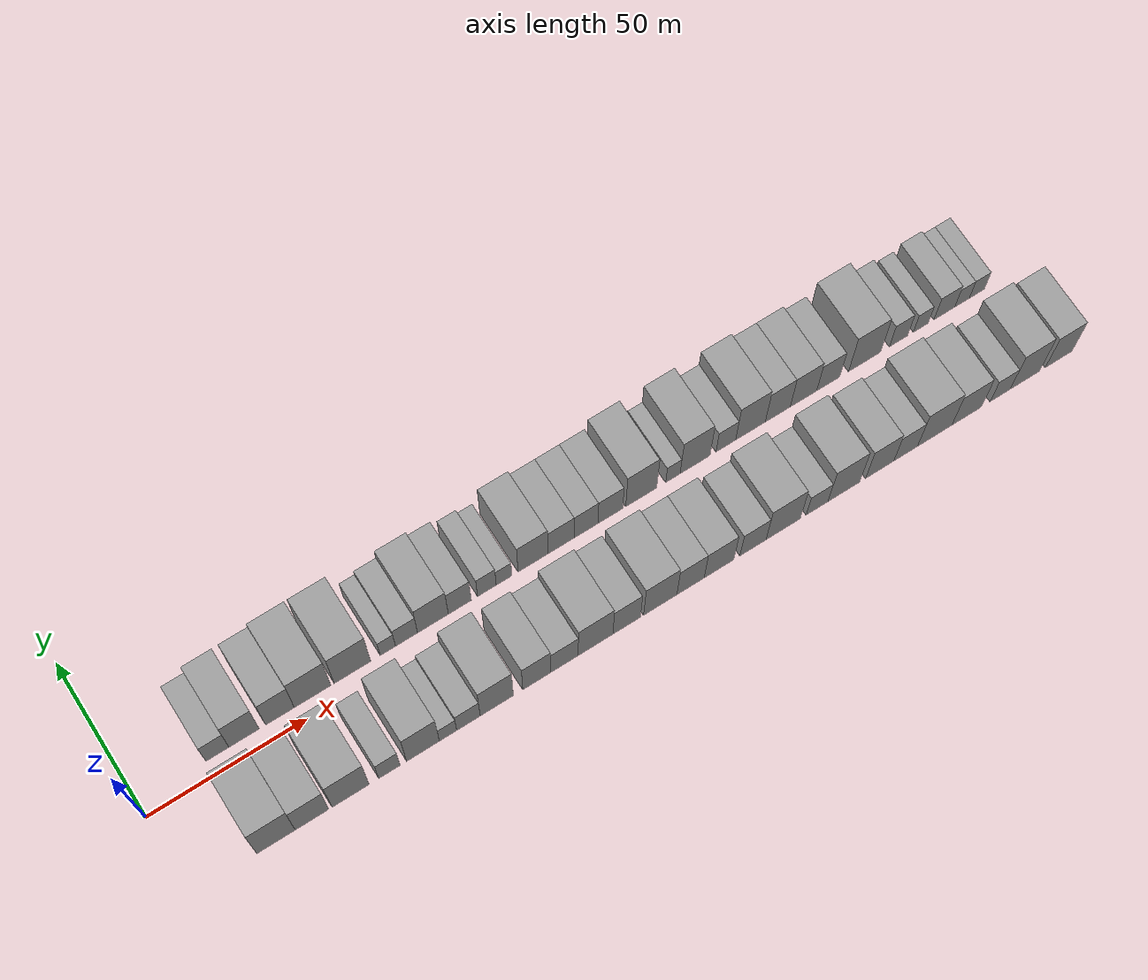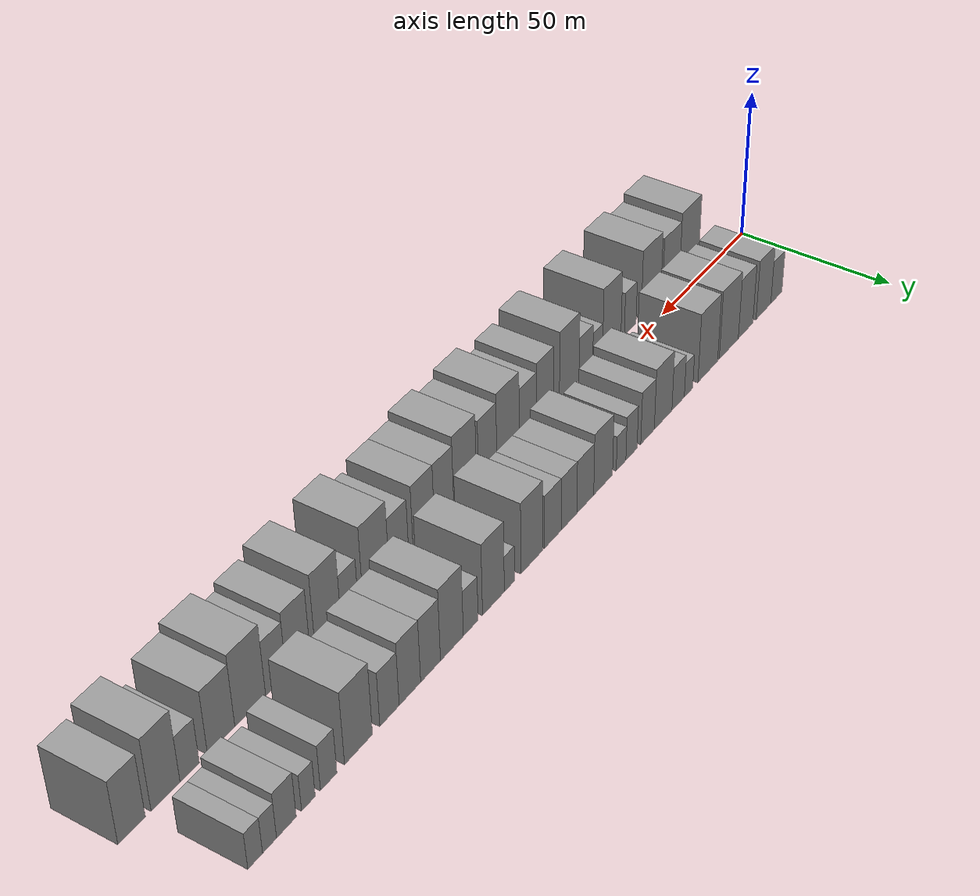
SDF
<sdf version="1.6">
 <world name="default">
  <scene>
   <sky><clouds><speed>12</speed></clouds></sky>
   <ambient>0.4 0.4 0.4 1</ambient>
   <background>0.7 0.7 0.7 1</background>
   <shadows>1</shadows>
  </scene>
  <gravity>0 0 -9.8066</gravity>
  <magnetic_field>6e-06 2.3e-05 -4.2e-05</magnetic_field>
  <physics default="0" name="default_physics" type="ode">
   <ode>
    <solver>
     <type>quick</type>
     <iters>10</iters>
     <sor>1.0</sor>
     <use_dynamic_moi_rescaling>0</use_dynamic_moi_rescaling>
    </solver>
    <constraints>
     <cfm>0</cfm>
     <erp>0.2</erp>
     <contact_max_correcting_vel>100</contact_max_correcting_vel>
     <contact_surface_layer>0.001</contact_surface_layer>
    </constraints>
   </ode>
   <max_step_size>0.004</max_step_size>
   <real_time_factor>1</real_time_factor>
   <real_time_update_rate>250</real_time_update_rate>
  </physics>
  <light name="sun" type="directional">
   <pose>0 0 10 0 0 0</pose>
   <diffuse>0.8 0.8 0.8 1</diffuse>
   <specular>0.2 0.2 0.2 1</specular>
   <attenuation>
    <range>1000</range>
    <constant>0.9</constant>
    <linear>0.01</linear>
    <quadratic>0.001</quadratic>
   </attenuation>
   <direction>-0.5 0.1 -0.9</direction>
  </light>
  <model name="building_1">
   <static>1</static>
   <pose>24.5800 14.5000 0 0.000000 0.000000 1.570796</pose>
   <link name="link">
    <pose>0 0 7.50 0 0 0</pose>
    <collision name="collision"><geometry><box><size>20.0000 7.1601 15.0000</size></box></geometry></collision>
    <visual name="visual">
     <cast_shadows>0</cast_shadows>
     <geometry><box><size>20.0000 7.1601 15.0000</size></box></geometry>
     <material>
      <script>
       <uri>model://grey_wall/materials/scripts</uri>
       <uri>model://grey_wall/materials/textures</uri>
       <name>vrc/grey_wall</name>
      </script>
     </material>
    </visual>
   </link>
  </model>
  <model name="building_2">
   <static>1</static>
   <pose>32.8570 14.5000 0 0.000000 0.000000 1.570796</pose>
   <link name="link">
    <pose>0 0 10.50 0 0 0</pose>
    <collision name="collision"><geometry><box><size>20.0000 9.3938 21.0000</size></box></geometry></collision>
    <visual name="visual">
     <cast_shadows>0</cast_shadows>
     <geometry><box><size>20.0000 9.3938 21.0000</size></box></geometry>
     <material>
      <script>
       <uri>model://grey_wall/materials/scripts</uri>
       <uri>model://grey_wall/materials/textures</uri>
       <name>vrc/grey_wall</name>
      </script>
     </material>
    </visual>
   </link>
  </model>
  <model name="building_3">
   <static>1</static>
   <pose>44.0521 14.5000 0 0.000000 0.000000 1.570796</pose>
   <link name="link">
    <pose>0 0 10.50 0 0 0</pose>
    <collision name="collision"><geometry><box><size>20.0000 8.9964 21.0000</size></box></geometry></collision>
    <visual name="visual">
     <cast_shadows>0</cast_shadows>
     <geometry><box><size>20.0000 8.9964 21.0000</size></box></geometry>
     <material>
      <script>
       <uri>model://grey_wall/materials/scripts</uri>
       <uri>model://grey_wall/materials/textures</uri>
       <name>vrc/grey_wall</name>
      </script>
     </material>
    </visual>
   </link>
  </model>
  <model name="building_4">
   <static>1</static>
   <pose>54.3155 14.5000 0 0.000000 0.000000 1.570796</pose>
   <link name="link">
    <pose>0 0 12.00 0 0 0</pose>
    <collision name="collision"><geometry><box><size>20.0000 11.5303 24.0000</size></box></geometry></collision>
    <visual name="visual">
     <cast_shadows>0</cast_shadows>
     <geometry><box><size>20.0000 11.5303 24.0000</size></box></geometry>
     <material>
      <script>
       <uri>model://grey_wall/materials/scripts</uri>
       <uri>model://grey_wall/materials/textures</uri>
       <name>vrc/grey_wall</name>
      </script>
     </material>
    </visual>
   </link>
  </model>
  <model name="building_5">
   <static>1</static>
   <pose>66.8927 14.5000 0 0.000000 0.000000 1.570796</pose>
   <link name="link">
    <pose>0 0 12.00 0 0 0</pose>
    <collision name="collision"><geometry><box><size>20.0000 11.6241 24.0000</size></box></geometry></collision>
    <visual name="visual">
     <cast_shadows>0</cast_shadows>
     <geometry><box><size>20.0000 11.6241 24.0000</size></box></geometry>
     <material>
      <script>
       <uri>model://grey_wall/materials/scripts</uri>
       <uri>model://grey_wall/materials/textures</uri>
       <name>vrc/grey_wall</name>
      </script>
     </material>
    </visual>
   </link>
  </model>
  <model name="building_6">
   <static>1</static>
   <pose>78.1400 14.5000 0 0.000000 0.000000 1.570796</pose>
   <link name="link">
    <pose>0 0 6.00 0 0 0</pose>
    <collision name="collision"><geometry><box><size>20.0000 4.8705 12.0000</size></box></geometry></collision>
    <visual name="visual">
     <cast_shadows>0</cast_shadows>
     <geometry><box><size>20.0000 4.8705 12.0000</size></box></geometry>
     <material>
      <script>
       <uri>model://grey_wall/materials/scripts</uri>
       <uri>model://grey_wall/materials/textures</uri>
       <name>vrc/grey_wall</name>
      </script>
     </material>
    </visual>
   </link>
  </model>
  <model name="building_7">
   <static>1</static>
   <pose>84.1085 14.5000 0 0.000000 0.000000 1.570796</pose>
   <link name="link">
    <pose>0 0 7.50 0 0 0</pose>
    <collision name="collision"><geometry><box><size>20.0000 7.0665 15.0000</size></box></geometry></collision>
    <visual name="visual">
     <cast_shadows>0</cast_shadows>
     <geometry><box><size>20.0000 7.0665 15.0000</size></box></geometry>
     <material>
      <script>
       <uri>model://grey_wall/materials/scripts</uri>
       <uri>model://grey_wall/materials/textures</uri>
       <name>vrc/grey_wall</name>
      </script>
     </material>
    </visual>
   </link>
  </model>
  <model name="building_8">
   <static>1</static>
   <pose>92.5737 14.5000 0 0.000000 0.000000 1.570796</pose>
   <link name="link">
    <pose>0 0 10.50 0 0 0</pose>
    <collision name="collision"><geometry><box><size>20.0000 9.8639 21.0000</size></box></geometry></collision>
    <visual name="visual">
     <cast_shadows>0</cast_shadows>
     <geometry><box><size>20.0000 9.8639 21.0000</size></box></geometry>
     <material>
      <script>
       <uri>model://grey_wall/materials/scripts</uri>
       <uri>model://grey_wall/materials/textures</uri>
       <name>vrc/grey_wall</name>
      </script>
     </material>
    </visual>
   </link>
  </model>
  <model name="building_9">
   <static>1</static>
   <pose>101.2259 14.5000 0 0.000000 0.000000 1.570796</pose>
   <link name="link">
    <pose>0 0 9.00 0 0 0</pose>
    <collision name="collision"><geometry><box><size>20.0000 7.4406 18.0000</size></box></geometry></collision>
    <visual name="visual">
     <cast_shadows>0</cast_shadows>
     <geometry><box><size>20.0000 7.4406 18.0000</size></box></geometry>
     <material>
      <script>
       <uri>model://grey_wall/materials/scripts</uri>
       <uri>model://grey_wall/materials/textures</uri>
       <name>vrc/grey_wall</name>
      </script>
     </material>
    </visual>
   </link>
  </model>
  <model name="building_10">
   <static>1</static>
   <pose>109.9643 14.5000 0 0.000000 0.000000 1.570796</pose>
   <link name="link">
    <pose>0 0 7.50 0 0 0</pose>
    <collision name="collision"><geometry><box><size>20.0000 6.0361 15.0000</size></box></geometry></collision>
    <visual name="visual">
     <cast_shadows>0</cast_shadows>
     <geometry><box><size>20.0000 6.0361 15.0000</size></box></geometry>
     <material>
      <script>
       <uri>model://grey_wall/materials/scripts</uri>
       <uri>model://grey_wall/materials/textures</uri>
       <name>vrc/grey_wall</name>
      </script>
     </material>
    </visual>
   </link>
  </model>
  <model name="building_11">
   <static>1</static>
   <pose>115.5246 14.5000 0 0.000000 0.000000 1.570796</pose>
   <link name="link">
    <pose>0 0 6.00 0 0 0</pose>
    <collision name="collision"><geometry><box><size>20.0000 5.0844 12.0000</size></box></geometry></collision>
    <visual name="visual">
     <cast_shadows>0</cast_shadows>
     <geometry><box><size>20.0000 5.0844 12.0000</size></box></geometry>
     <material>
      <script>
       <uri>model://grey_wall/materials/scripts</uri>
       <uri>model://grey_wall/materials/textures</uri>
       <name>vrc/grey_wall</name>
      </script>
     </material>
    </visual>
   </link>
  </model>
  <model name="building_12">
   <static>1</static>
   <pose>124.9662 14.5000 0 0.000000 0.000000 1.570796</pose>
   <link name="link">
    <pose>0 0 10.50 0 0 0</pose>
    <collision name="collision"><geometry><box><size>20.0000 9.7989 21.0000</size></box></geometry></collision>
    <visual name="visual">
     <cast_shadows>0</cast_shadows>
     <geometry><box><size>20.0000 9.7989 21.0000</size></box></geometry>
     <material>
      <script>
       <uri>model://grey_wall/materials/scripts</uri>
       <uri>model://grey_wall/materials/textures</uri>
       <name>vrc/grey_wall</name>
      </script>
     </material>
    </visual>
   </link>
  </model>
  <model name="building_13">
   <static>1</static>
   <pose>134.1524 14.5000 0 0.000000 0.000000 1.570796</pose>
   <link name="link">
    <pose>0 0 9.00 0 0 0</pose>
    <collision name="collision"><geometry><box><size>20.0000 8.5734 18.0000</size></box></geometry></collision>
    <visual name="visual">
     <cast_shadows>0</cast_shadows>
     <geometry><box><size>20.0000 8.5734 18.0000</size></box></geometry>
     <material>
      <script>
       <uri>model://grey_wall/materials/scripts</uri>
       <uri>model://grey_wall/materials/textures</uri>
       <name>vrc/grey_wall</name>
      </script>
     </material>
    </visual>
   </link>
  </model>
  <model name="building_14">
   <static>1</static>
   <pose>142.3637 14.5000 0 0.000000 0.000000 1.570796</pose>
   <link name="link">
    <pose>0 0 9.00 0 0 0</pose>
    <collision name="collision"><geometry><box><size>20.0000 7.8491 18.0000</size></box></geometry></collision>
    <visual name="visual">
     <cast_shadows>0</cast_shadows>
     <geometry><box><size>20.0000 7.8491 18.0000</size></box></geometry>
     <material>
      <script>
       <uri>model://grey_wall/materials/scripts</uri>
       <uri>model://grey_wall/materials/textures</uri>
       <name>vrc/grey_wall</name>
      </script>
     </material>
    </visual>
   </link>
  </model>
  <model name="building_15">
   <static>1</static>
   <pose>150.3794 14.5000 0 0.000000 0.000000 1.570796</pose>
   <link name="link">
    <pose>0 0 9.00 0 0 0</pose>
    <collision name="collision"><geometry><box><size>20.0000 8.1824 18.0000</size></box></geometry></collision>
    <visual name="visual">
     <cast_shadows>0</cast_shadows>
     <geometry><box><size>20.0000 8.1824 18.0000</size></box></geometry>
     <material>
      <script>
       <uri>model://grey_wall/materials/scripts</uri>
       <uri>model://grey_wall/materials/textures</uri>
       <name>vrc/grey_wall</name>
      </script>
     </material>
    </visual>
   </link>
  </model>
  <model name="building_16">
   <static>1</static>
   <pose>160.6285 14.5000 0 0.000000 0.000000 1.570796</pose>
   <link name="link">
    <pose>0 0 12.00 0 0 0</pose>
    <collision name="collision"><geometry><box><size>20.0000 10.3158 24.0000</size></box></geometry></collision>
    <visual name="visual">
     <cast_shadows>0</cast_shadows>
     <geometry><box><size>20.0000 10.3158 24.0000</size></box></geometry>
     <material>
      <script>
       <uri>model://grey_wall/materials/scripts</uri>
       <uri>model://grey_wall/materials/textures</uri>
       <name>vrc/grey_wall</name>
      </script>
     </material>
    </visual>
   </link>
  </model>
  <model name="building_17">
   <static>1</static>
   <pose>171.1997 14.5000 0 0.000000 0.000000 1.570796</pose>
   <link name="link">
    <pose>0 0 6.00 0 0 0</pose>
    <collision name="collision"><geometry><box><size>20.0000 4.8267 12.0000</size></box></geometry></collision>
    <visual name="visual">
     <cast_shadows>0</cast_shadows>
     <geometry><box><size>20.0000 4.8267 12.0000</size></box></geometry>
     <material>
      <script>
       <uri>model://grey_wall/materials/scripts</uri>
       <uri>model://grey_wall/materials/textures</uri>
       <name>vrc/grey_wall</name>
      </script>
     </material>
    </visual>
   </link>
  </model>
  <model name="building_18">
   <static>1</static>
   <pose>178.6319 14.5000 0 0.000000 0.000000 1.570796</pose>
   <link name="link">
    <pose>0 0 12.00 0 0 0</pose>
    <collision name="collision"><geometry><box><size>20.0000 10.0376 24.0000</size></box></geometry></collision>
    <visual name="visual">
     <cast_shadows>0</cast_shadows>
     <geometry><box><size>20.0000 10.0376 24.0000</size></box></geometry>
     <material>
      <script>
       <uri>model://grey_wall/materials/scripts</uri>
       <uri>model://grey_wall/materials/textures</uri>
       <name>vrc/grey_wall</name>
      </script>
     </material>
    </visual>
   </link>
  </model>
  <model name="building_19">
   <static>1</static>
   <pose>188.9557 14.5000 0 0.000000 0.000000 1.570796</pose>
   <link name="link">
    <pose>0 0 7.50 0 0 0</pose>
    <collision name="collision"><geometry><box><size>20.0000 6.6099 15.0000</size></box></geometry></collision>
    <visual name="visual">
     <cast_shadows>0</cast_shadows>
     <geometry><box><size>20.0000 6.6099 15.0000</size></box></geometry>
     <material>
      <script>
       <uri>model://grey_wall/materials/scripts</uri>
       <uri>model://grey_wall/materials/textures</uri>
       <name>vrc/grey_wall</name>
      </script>
     </material>
    </visual>
   </link>
  </model>
  <model name="building_20">
   <static>1</static>
   <pose>197.2982 14.5000 0 0.000000 0.000000 1.570796</pose>
   <link name="link">
    <pose>0 0 12.00 0 0 0</pose>
    <collision name="collision"><geometry><box><size>20.0000 10.0751 24.0000</size></box></geometry></collision>
    <visual name="visual">
     <cast_shadows>0</cast_shadows>
     <geometry><box><size>20.0000 10.0751 24.0000</size></box></geometry>
     <material>
      <script>
       <uri>model://grey_wall/materials/scripts</uri>
       <uri>model://grey_wall/materials/textures</uri>
       <name>vrc/grey_wall</name>
      </script>
     </material>
    </visual>
   </link>
  </model>
  <model name="building_21">
   <static>1</static>
   <pose>206.5901 14.5000 0 0.000000 0.000000 1.570796</pose>
   <link name="link">
    <pose>0 0 10.50 0 0 0</pose>
    <collision name="collision"><geometry><box><size>20.0000 8.5087 21.0000</size></box></geometry></collision>
    <visual name="visual">
     <cast_shadows>0</cast_shadows>
     <geometry><box><size>20.0000 8.5087 21.0000</size></box></geometry>
     <material>
      <script>
       <uri>model://grey_wall/materials/scripts</uri>
       <uri>model://grey_wall/materials/textures</uri>
       <name>vrc/grey_wall</name>
      </script>
     </material>
    </visual>
   </link>
  </model>
  <model name="building_22">
   <static>1</static>
   <pose>215.3649 14.5000 0 0.000000 0.000000 1.570796</pose>
   <link name="link">
    <pose>0 0 10.50 0 0 0</pose>
    <collision name="collision"><geometry><box><size>20.0000 9.0410 21.0000</size></box></geometry></collision>
    <visual name="visual">
     <cast_shadows>0</cast_shadows>
     <geometry><box><size>20.0000 9.0410 21.0000</size></box></geometry>
     <material>
      <script>
       <uri>model://grey_wall/materials/scripts</uri>
       <uri>model://grey_wall/materials/textures</uri>
       <name>vrc/grey_wall</name>
      </script>
     </material>
    </visual>
   </link>
  </model>
  <model name="building_23">
   <static>1</static>
   <pose>223.8571 14.5000 0 0.000000 0.000000 1.570796</pose>
   <link name="link">
    <pose>0 0 9.00 0 0 0</pose>
    <collision name="collision"><geometry><box><size>20.0000 7.9435 18.0000</size></box></geometry></collision>
    <visual name="visual">
     <cast_shadows>0</cast_shadows>
     <geometry><box><size>20.0000 7.9435 18.0000</size></box></geometry>
     <material>
      <script>
       <uri>model://grey_wall/materials/scripts</uri>
       <uri>model://grey_wall/materials/textures</uri>
       <name>vrc/grey_wall</name>
      </script>
     </material>
    </visual>
   </link>
  </model>
  <model name="building_24">
   <static>1</static>
   <pose>236.3933 14.5000 0 0.000000 0.000000 1.570796</pose>
   <link name="link">
    <pose>0 0 12.00 0 0 0</pose>
    <collision name="collision"><geometry><box><size>20.0000 11.1290 24.0000</size></box></geometry></collision>
    <visual name="visual">
     <cast_shadows>0</cast_shadows>
     <geometry><box><size>20.0000 11.1290 24.0000</size></box></geometry>
     <material>
      <script>
       <uri>model://grey_wall/materials/scripts</uri>
       <uri>model://grey_wall/materials/textures</uri>
       <name>vrc/grey_wall</name>
      </script>
     </material>
    </visual>
   </link>
  </model>
  <model name="building_25">
   <static>1</static>
   <pose>248.1304 14.5000 0 0.000000 0.000000 1.570796</pose>
   <link name="link">
    <pose>0 0 7.50 0 0 0</pose>
    <collision name="collision"><geometry><box><size>20.0000 6.3451 15.0000</size></box></geometry></collision>
    <visual name="visual">
     <cast_shadows>0</cast_shadows>
     <geometry><box><size>20.0000 6.3451 15.0000</size></box></geometry>
     <material>
      <script>
       <uri>model://grey_wall/materials/scripts</uri>
       <uri>model://grey_wall/materials/textures</uri>
       <name>vrc/grey_wall</name>
      </script>
     </material>
    </visual>
   </link>
  </model>
  <model name="building_26">
   <static>1</static>
   <pose>255.8941 14.5000 0 0.000000 0.000000 1.570796</pose>
   <link name="link">
    <pose>0 0 6.00 0 0 0</pose>
    <collision name="collision"><geometry><box><size>20.0000 5.1823 12.0000</size></box></geometry></collision>
    <visual name="visual">
     <cast_shadows>0</cast_shadows>
     <geometry><box><size>20.0000 5.1823 12.0000</size></box></geometry>
     <material>
      <script>
       <uri>model://grey_wall/materials/scripts</uri>
       <uri>model://grey_wall/materials/textures</uri>
       <name>vrc/grey_wall</name>
      </script>
     </material>
    </visual>
   </link>
  </model>
  <model name="building_27">
   <static>1</static>
   <pose>264.1431 14.5000 0 0.000000 0.000000 1.570796</pose>
   <link name="link">
    <pose>0 0 7.50 0 0 0</pose>
    <collision name="collision"><geometry><box><size>20.0000 7.3158 15.0000</size></box></geometry></collision>
    <visual name="visual">
     <cast_shadows>0</cast_shadows>
     <geometry><box><size>20.0000 7.3158 15.0000</size></box></geometry>
     <material>
      <script>
       <uri>model://grey_wall/materials/scripts</uri>
       <uri>model://grey_wall/materials/textures</uri>
       <name>vrc/grey_wall</name>
      </script>
     </material>
    </visual>
   </link>
  </model>
  <model name="building_28">
   <static>1</static>
   <pose>270.3426 14.5000 0 0.000000 0.000000 1.570796</pose>
   <link name="link">
    <pose>0 0 6.00 0 0 0</pose>
    <collision name="collision"><geometry><box><size>20.0000 5.0831 12.0000</size></box></geometry></collision>
    <visual name="visual">
     <cast_shadows>0</cast_shadows>
     <geometry><box><size>20.0000 5.0831 12.0000</size></box></geometry>
     <material>
      <script>
       <uri>model://grey_wall/materials/scripts</uri>
       <uri>model://grey_wall/materials/textures</uri>
       <name>vrc/grey_wall</name>
      </script>
     </material>
    </visual>
   </link>
  </model>
  <model name="building_29">
   <static>1</static>
   <pose>275.5428 14.5000 0 0.000000 0.000000 1.570796</pose>
   <link name="link">
    <pose>0 0 6.00 0 0 0</pose>
    <collision name="collision"><geometry><box><size>20.0000 5.3172 12.0000</size></box></geometry></collision>
    <visual name="visual">
     <cast_shadows>0</cast_shadows>
     <geometry><box><size>20.0000 5.3172 12.0000</size></box></geometry>
     <material>
      <script>
       <uri>model://grey_wall/materials/scripts</uri>
       <uri>model://grey_wall/materials/textures</uri>
       <name>vrc/grey_wall</name>
      </script>
     </material>
    </visual>
   </link>
  </model>
  <model name="building_30">
   <static>1</static>
   <pose>25.9216 -14.5000 0 0.000000 0.000000 1.570796</pose>
   <link name="link">
    <pose>0 0 12.00 0 0 0</pose>
    <collision name="collision"><geometry><box><size>20.0000 11.8431 24.0000</size></box></geometry></collision>
    <visual name="visual">
     <cast_shadows>0</cast_shadows>
     <geometry><box><size>20.0000 11.8431 24.0000</size></box></geometry>
     <material>
      <script>
       <uri>model://grey_wall/materials/scripts</uri>
       <uri>model://grey_wall/materials/textures</uri>
       <name>vrc/grey_wall</name>
      </script>
     </material>
    </visual>
   </link>
  </model>
  <model name="building_31">
   <static>1</static>
   <pose>37.0387 -14.5000 0 0.000000 0.000000 1.570796</pose>
   <link name="link">
    <pose>0 0 10.50 0 0 0</pose>
    <collision name="collision"><geometry><box><size>20.0000 10.3912 21.0000</size></box></geometry></collision>
    <visual name="visual">
     <cast_shadows>0</cast_shadows>
     <geometry><box><size>20.0000 10.3912 21.0000</size></box></geometry>
     <material>
      <script>
       <uri>model://grey_wall/materials/scripts</uri>
       <uri>model://grey_wall/materials/textures</uri>
       <name>vrc/grey_wall</name>
      </script>
     </material>
    </visual>
   </link>
  </model>
  <model name="building_32">
   <static>1</static>
   <pose>49.0209 -14.5000 0 0.000000 0.000000 1.570796</pose>
   <link name="link">
    <pose>0 0 12.00 0 0 0</pose>
    <collision name="collision"><geometry><box><size>20.0000 11.5732 24.0000</size></box></geometry></collision>
    <visual name="visual">
     <cast_shadows>0</cast_shadows>
     <geometry><box><size>20.0000 11.5732 24.0000</size></box></geometry>
     <material>
      <script>
       <uri>model://grey_wall/materials/scripts</uri>
       <uri>model://grey_wall/materials/textures</uri>
       <name>vrc/grey_wall</name>
      </script>
     </material>
    </visual>
   </link>
  </model>
  <model name="building_33">
   <static>1</static>
   <pose>61.1733 -14.5000 0 0.000000 0.000000 1.570796</pose>
   <link name="link">
    <pose>0 0 7.50 0 0 0</pose>
    <collision name="collision"><geometry><box><size>20.0000 6.7315 15.0000</size></box></geometry></collision>
    <visual name="visual">
     <cast_shadows>0</cast_shadows>
     <geometry><box><size>20.0000 6.7315 15.0000</size></box></geometry>
     <material>
      <script>
       <uri>model://grey_wall/materials/scripts</uri>
       <uri>model://grey_wall/materials/textures</uri>
       <name>vrc/grey_wall</name>
      </script>
     </material>
    </visual>
   </link>
  </model>
  <model name="building_34">
   <static>1</static>
   <pose>71.7180 -14.5000 0 0.000000 0.000000 1.570796</pose>
   <link name="link">
    <pose>0 0 12.00 0 0 0</pose>
    <collision name="collision"><geometry><box><size>20.0000 10.3581 24.0000</size></box></geometry></collision>
    <visual name="visual">
     <cast_shadows>0</cast_shadows>
     <geometry><box><size>20.0000 10.3581 24.0000</size></box></geometry>
     <material>
      <script>
       <uri>model://grey_wall/materials/scripts</uri>
       <uri>model://grey_wall/materials/textures</uri>
       <name>vrc/grey_wall</name>
      </script>
     </material>
    </visual>
   </link>
  </model>
  <model name="building_35">
   <static>1</static>
   <pose>79.6423 -14.5000 0 0.000000 0.000000 1.570796</pose>
   <link name="link">
    <pose>0 0 6.00 0 0 0</pose>
    <collision name="collision"><geometry><box><size>20.0000 5.4904 12.0000</size></box></geometry></collision>
    <visual name="visual">
     <cast_shadows>0</cast_shadows>
     <geometry><box><size>20.0000 5.4904 12.0000</size></box></geometry>
     <material>
      <script>
       <uri>model://grey_wall/materials/scripts</uri>
       <uri>model://grey_wall/materials/textures</uri>
       <name>vrc/grey_wall</name>
      </script>
     </material>
    </visual>
   </link>
  </model>
  <model name="building_36">
   <static>1</static>
   <pose>86.1183 -14.5000 0 0.000000 0.000000 1.570796</pose>
   <link name="link">
    <pose>0 0 7.50 0 0 0</pose>
    <collision name="collision"><geometry><box><size>20.0000 7.4617 15.0000</size></box></geometry></collision>
    <visual name="visual">
     <cast_shadows>0</cast_shadows>
     <geometry><box><size>20.0000 7.4617 15.0000</size></box></geometry>
     <material>
      <script>
       <uri>model://grey_wall/materials/scripts</uri>
       <uri>model://grey_wall/materials/textures</uri>
       <name>vrc/grey_wall</name>
      </script>
     </material>
    </visual>
   </link>
  </model>
  <model name="building_37">
   <static>1</static>
   <pose>95.1426 -14.5000 0 0.000000 0.000000 1.570796</pose>
   <link name="link">
    <pose>0 0 12.00 0 0 0</pose>
    <collision name="collision"><geometry><box><size>20.0000 10.5868 24.0000</size></box></geometry></collision>
    <visual name="visual">
     <cast_shadows>0</cast_shadows>
     <geometry><box><size>20.0000 10.5868 24.0000</size></box></geometry>
     <material>
      <script>
       <uri>model://grey_wall/materials/scripts</uri>
       <uri>model://grey_wall/materials/textures</uri>
       <name>vrc/grey_wall</name>
      </script>
     </material>
    </visual>
   </link>
  </model>
  <model name="building_38">
   <static>1</static>
   <pose>107.9551 -14.5000 0 0.000000 0.000000 1.570796</pose>
   <link name="link">
    <pose>0 0 10.50 0 0 0</pose>
    <collision name="collision"><geometry><box><size>20.0000 9.0383 21.0000</size></box></geometry></collision>
    <visual name="visual">
     <cast_shadows>0</cast_shadows>
     <geometry><box><size>20.0000 9.0383 21.0000</size></box></geometry>
     <material>
      <script>
       <uri>model://grey_wall/materials/scripts</uri>
       <uri>model://grey_wall/materials/textures</uri>
       <name>vrc/grey_wall</name>
      </script>
     </material>
    </visual>
   </link>
  </model>
  <model name="building_39">
   <static>1</static>
   <pose>116.8710 -14.5000 0 0.000000 0.000000 1.570796</pose>
   <link name="link">
    <pose>0 0 9.00 0 0 0</pose>
    <collision name="collision"><geometry><box><size>20.0000 8.7934 18.0000</size></box></geometry></collision>
    <visual name="visual">
     <cast_shadows>0</cast_shadows>
     <geometry><box><size>20.0000 8.7934 18.0000</size></box></geometry>
     <material>
      <script>
       <uri>model://grey_wall/materials/scripts</uri>
       <uri>model://grey_wall/materials/textures</uri>
       <name>vrc/grey_wall</name>
      </script>
     </material>
    </visual>
   </link>
  </model>
  <model name="building_40">
   <static>1</static>
   <pose>126.9209 -14.5000 0 0.000000 0.000000 1.570796</pose>
   <link name="link">
    <pose>0 0 12.00 0 0 0</pose>
    <collision name="collision"><geometry><box><size>20.0000 11.3064 24.0000</size></box></geometry></collision>
    <visual name="visual">
     <cast_shadows>0</cast_shadows>
     <geometry><box><size>20.0000 11.3064 24.0000</size></box></geometry>
     <material>
      <script>
       <uri>model://grey_wall/materials/scripts</uri>
       <uri>model://grey_wall/materials/textures</uri>
       <name>vrc/grey_wall</name>
      </script>
     </material>
    </visual>
   </link>
  </model>
  <model name="building_41">
   <static>1</static>
   <pose>137.0565 -14.5000 0 0.000000 0.000000 1.570796</pose>
   <link name="link">
    <pose>0 0 10.50 0 0 0</pose>
    <collision name="collision"><geometry><box><size>20.0000 8.9648 21.0000</size></box></geometry></collision>
    <visual name="visual">
     <cast_shadows>0</cast_shadows>
     <geometry><box><size>20.0000 8.9648 21.0000</size></box></geometry>
     <material>
      <script>
       <uri>model://grey_wall/materials/scripts</uri>
       <uri>model://grey_wall/materials/textures</uri>
       <name>vrc/grey_wall</name>
      </script>
     </material>
    </visual>
   </link>
  </model>
  <model name="building_42">
   <static>1</static>
   <pose>148.0106 -14.5000 0 0.000000 0.000000 1.570796</pose>
   <link name="link">
    <pose>0 0 12.00 0 0 0</pose>
    <collision name="collision"><geometry><box><size>20.0000 10.9434 24.0000</size></box></geometry></collision>
    <visual name="visual">
     <cast_shadows>0</cast_shadows>
     <geometry><box><size>20.0000 10.9434 24.0000</size></box></geometry>
     <material>
      <script>
       <uri>model://grey_wall/materials/scripts</uri>
       <uri>model://grey_wall/materials/textures</uri>
       <name>vrc/grey_wall</name>
      </script>
     </material>
    </visual>
   </link>
  </model>
  <model name="building_43">
   <static>1</static>
   <pose>158.0014 -14.5000 0 0.000000 0.000000 1.570796</pose>
   <link name="link">
    <pose>0 0 10.50 0 0 0</pose>
    <collision name="collision"><geometry><box><size>20.0000 9.0382 21.0000</size></box></geometry></collision>
    <visual name="visual">
     <cast_shadows>0</cast_shadows>
     <geometry><box><size>20.0000 9.0382 21.0000</size></box></geometry>
     <material>
      <script>
       <uri>model://grey_wall/materials/scripts</uri>
       <uri>model://grey_wall/materials/textures</uri>
       <name>vrc/grey_wall</name>
      </script>
     </material>
    </visual>
   </link>
  </model>
  <model name="building_44">
   <static>1</static>
   <pose>167.4317 -14.5000 0 0.000000 0.000000 1.570796</pose>
   <link name="link">
    <pose>0 0 10.50 0 0 0</pose>
    <collision name="collision"><geometry><box><size>20.0000 9.8224 21.0000</size></box></geometry></collision>
    <visual name="visual">
     <cast_shadows>0</cast_shadows>
     <geometry><box><size>20.0000 9.8224 21.0000</size></box></geometry>
     <material>
      <script>
       <uri>model://grey_wall/materials/scripts</uri>
       <uri>model://grey_wall/materials/textures</uri>
       <name>vrc/grey_wall</name>
      </script>
     </material>
    </visual>
   </link>
  </model>
  <model name="building_45">
   <static>1</static>
   <pose>178.7008 -14.5000 0 0.000000 0.000000 1.570796</pose>
   <link name="link">
    <pose>0 0 9.00 0 0 0</pose>
    <collision name="collision"><geometry><box><size>20.0000 8.7158 18.0000</size></box></geometry></collision>
    <visual name="visual">
     <cast_shadows>0</cast_shadows>
     <geometry><box><size>20.0000 8.7158 18.0000</size></box></geometry>
     <material>
      <script>
       <uri>model://grey_wall/materials/scripts</uri>
       <uri>model://grey_wall/materials/textures</uri>
       <name>vrc/grey_wall</name>
      </script>
     </material>
    </visual>
   </link>
  </model>
  <model name="building_46">
   <static>1</static>
   <pose>188.8040 -14.5000 0 0.000000 0.000000 1.570796</pose>
   <link name="link">
    <pose>0 0 12.00 0 0 0</pose>
    <collision name="collision"><geometry><box><size>20.0000 11.4906 24.0000</size></box></geometry></collision>
    <visual name="visual">
     <cast_shadows>0</cast_shadows>
     <geometry><box><size>20.0000 11.4906 24.0000</size></box></geometry>
     <material>
      <script>
       <uri>model://grey_wall/materials/scripts</uri>
       <uri>model://grey_wall/materials/textures</uri>
       <name>vrc/grey_wall</name>
      </script>
     </material>
    </visual>
   </link>
  </model>
  <model name="building_47">
   <static>1</static>
   <pose>200.1975 -14.5000 0 0.000000 0.000000 1.570796</pose>
   <link name="link">
    <pose>0 0 7.50 0 0 0</pose>
    <collision name="collision"><geometry><box><size>20.0000 7.2964 15.0000</size></box></geometry></collision>
    <visual name="visual">
     <cast_shadows>0</cast_shadows>
     <geometry><box><size>20.0000 7.2964 15.0000</size></box></geometry>
     <material>
      <script>
       <uri>model://grey_wall/materials/scripts</uri>
       <uri>model://grey_wall/materials/textures</uri>
       <name>vrc/grey_wall</name>
      </script>
     </material>
    </visual>
   </link>
  </model>
  <model name="building_48">
   <static>1</static>
   <pose>209.2456 -14.5000 0 0.000000 0.000000 1.570796</pose>
   <link name="link">
    <pose>0 0 12.00 0 0 0</pose>
    <collision name="collision"><geometry><box><size>20.0000 10.7999 24.0000</size></box></geometry></collision>
    <visual name="visual">
     <cast_shadows>0</cast_shadows>
     <geometry><box><size>20.0000 10.7999 24.0000</size></box></geometry>
     <material>
      <script>
       <uri>model://grey_wall/materials/scripts</uri>
       <uri>model://grey_wall/materials/textures</uri>
       <name>vrc/grey_wall</name>
      </script>
     </material>
    </visual>
   </link>
  </model>
  <model name="building_49">
   <static>1</static>
   <pose>221.4512 -14.5000 0 0.000000 0.000000 1.570796</pose>
   <link name="link">
    <pose>0 0 10.50 0 0 0</pose>
    <collision name="collision"><geometry><box><size>20.0000 9.6111 21.0000</size></box></geometry></collision>
    <visual name="visual">
     <cast_shadows>0</cast_shadows>
     <geometry><box><size>20.0000 9.6111 21.0000</size></box></geometry>
     <material>
      <script>
       <uri>model://grey_wall/materials/scripts</uri>
       <uri>model://grey_wall/materials/textures</uri>
       <name>vrc/grey_wall</name>
      </script>
     </material>
    </visual>
   </link>
  </model>
  <model name="building_50">
   <static>1</static>
   <pose>230.3031 -14.5000 0 0.000000 0.000000 1.570796</pose>
   <link name="link">
    <pose>0 0 9.00 0 0 0</pose>
    <collision name="collision"><geometry><box><size>20.0000 8.0928 18.0000</size></box></geometry></collision>
    <visual name="visual">
     <cast_shadows>0</cast_shadows>
     <geometry><box><size>20.0000 8.0928 18.0000</size></box></geometry>
     <material>
      <script>
       <uri>model://grey_wall/materials/scripts</uri>
       <uri>model://grey_wall/materials/textures</uri>
       <name>vrc/grey_wall</name>
      </script>
     </material>
    </visual>
   </link>
  </model>
  <model name="building_51">
   <static>1</static>
   <pose>240.2750 -14.5000 0 0.000000 0.000000 1.570796</pose>
   <link name="link">
    <pose>0 0 12.00 0 0 0</pose>
    <collision name="collision"><geometry><box><size>20.0000 11.8509 24.0000</size></box></geometry></collision>
    <visual name="visual">
     <cast_shadows>0</cast_shadows>
     <geometry><box><size>20.0000 11.8509 24.0000</size></box></geometry>
     <material>
      <script>
       <uri>model://grey_wall/materials/scripts</uri>
       <uri>model://grey_wall/materials/textures</uri>
       <name>vrc/grey_wall</name>
      </script>
     </material>
    </visual>
   </link>
  </model>
  <model name="building_52">
   <static>1</static>
   <pose>251.3274 -14.5000 0 0.000000 0.000000 1.570796</pose>
   <link name="link">
    <pose>0 0 10.50 0 0 0</pose>
    <collision name="collision"><geometry><box><size>20.0000 10.2538 21.0000</size></box></geometry></collision>
    <visual name="visual">
     <cast_shadows>0</cast_shadows>
     <geometry><box><size>20.0000 10.2538 21.0000</size></box></geometry>
     <material>
      <script>
       <uri>model://grey_wall/materials/scripts</uri>
       <uri>model://grey_wall/materials/textures</uri>
       <name>vrc/grey_wall</name>
      </script>
     </material>
    </visual>
   </link>
  </model>
  <model name="building_53">
   <static>1</static>
   <pose>262.9565 -14.5000 0 0.000000 0.000000 1.570796</pose>
   <link name="link">
    <pose>0 0 7.50 0 0 0</pose>
    <collision name="collision"><geometry><box><size>20.0000 7.0045 15.0000</size></box></geometry></collision>
    <visual name="visual">
     <cast_shadows>0</cast_shadows>
     <geometry><box><size>20.0000 7.0045 15.0000</size></box></geometry>
     <material>
      <script>
       <uri>model://grey_wall/materials/scripts</uri>
       <uri>model://grey_wall/materials/textures</uri>
       <name>vrc/grey_wall</name>
      </script>
     </material>
    </visual>
   </link>
  </model>
  <model name="building_54">
   <static>1</static>
   <pose>271.5915 -14.5000 0 0.000000 0.000000 1.570796</pose>
   <link name="link">
    <pose>0 0 12.00 0 0 0</pose>
    <collision name="collision"><geometry><box><size>20.0000 10.2654 24.0000</size></box></geometry></collision>
    <visual name="visual">
     <cast_shadows>0</cast_shadows>
     <geometry><box><size>20.0000 10.2654 24.0000</size></box></geometry>
     <material>
      <script>
       <uri>model://grey_wall/materials/scripts</uri>
       <uri>model://grey_wall/materials/textures</uri>
       <name>vrc/grey_wall</name>
      </script>
     </material>
    </visual>
   </link>
  </model>
  <model name="building_55">
   <static>1</static>
   <pose>283.4515 -14.5000 0 0.000000 0.000000 1.570796</pose>
   <link name="link">
    <pose>0 0 10.50 0 0 0</pose>
    <collision name="collision"><geometry><box><size>20.0000 9.4545 21.0000</size></box></geometry></collision>
    <visual name="visual">
     <cast_shadows>0</cast_shadows>
     <geometry><box><size>20.0000 9.4545 21.0000</size></box></geometry>
     <material>
      <script>
       <uri>model://grey_wall/materials/scripts</uri>
       <uri>model://grey_wall/materials/textures</uri>
       <name>vrc/grey_wall</name>
      </script>
     </material>
    </visual>
   </link>
  </model>
 </world>
</sdf>
